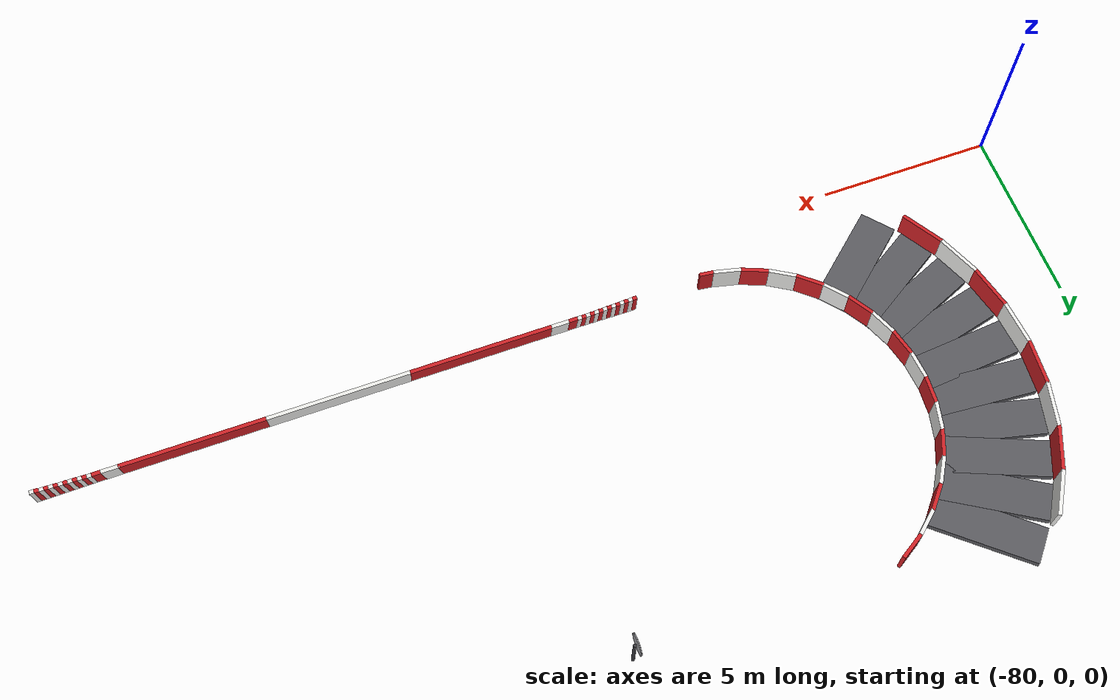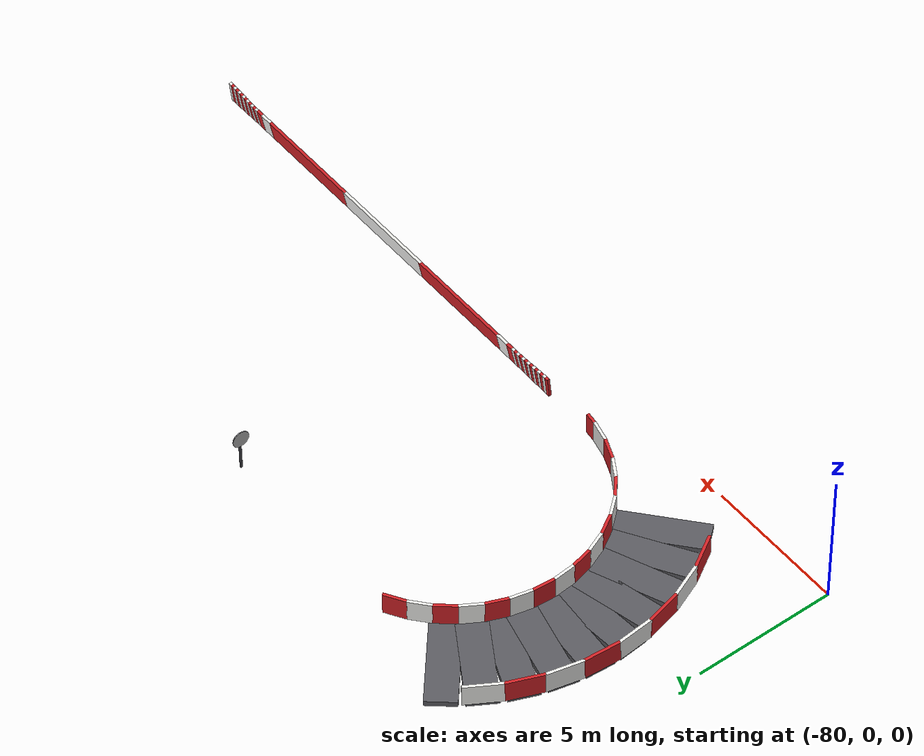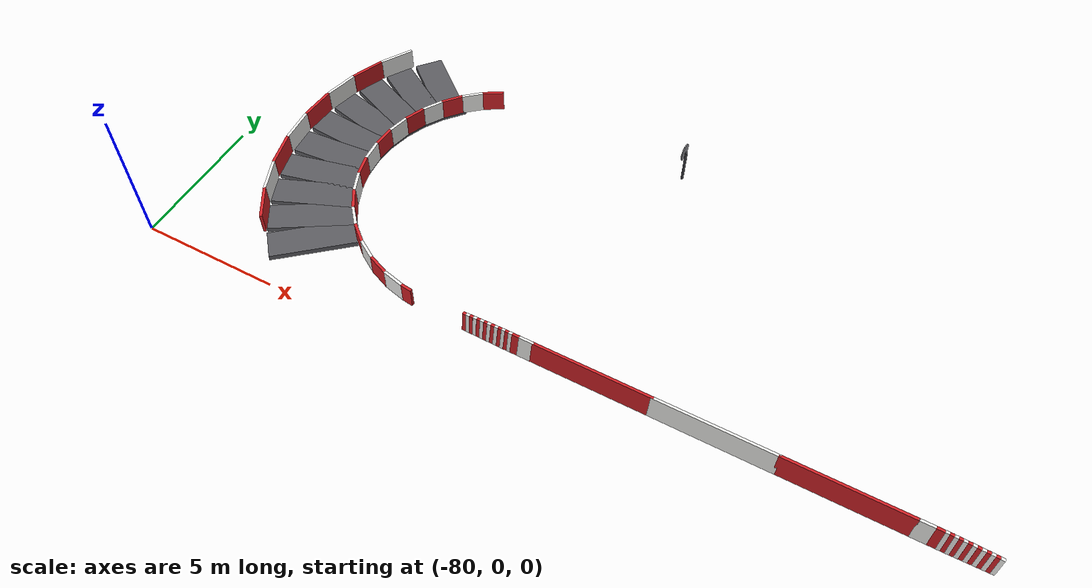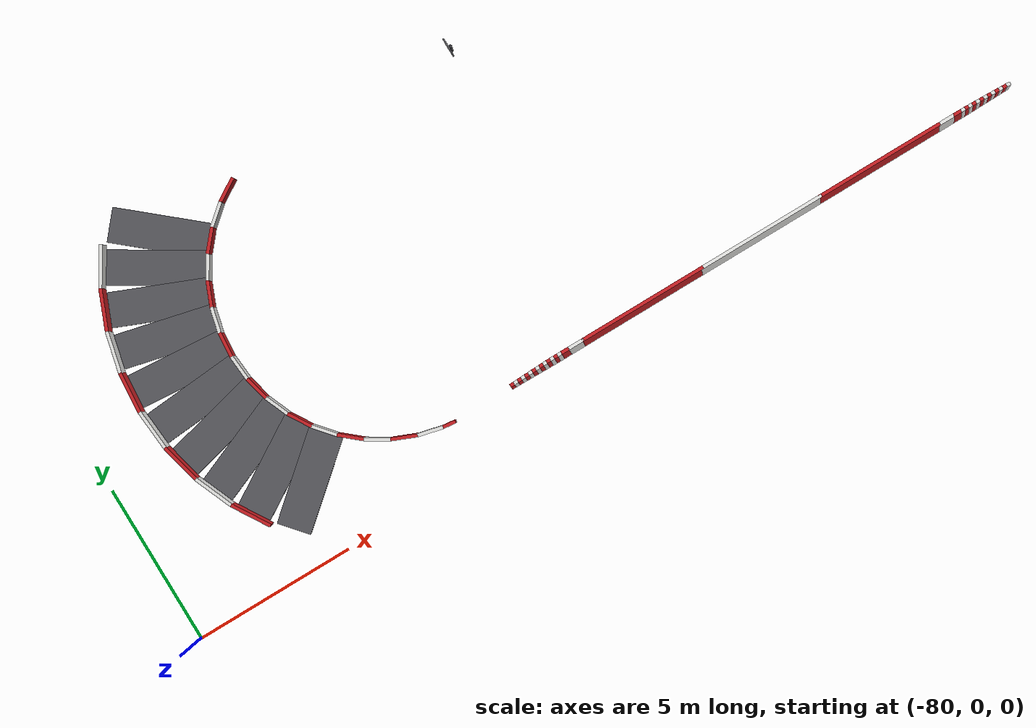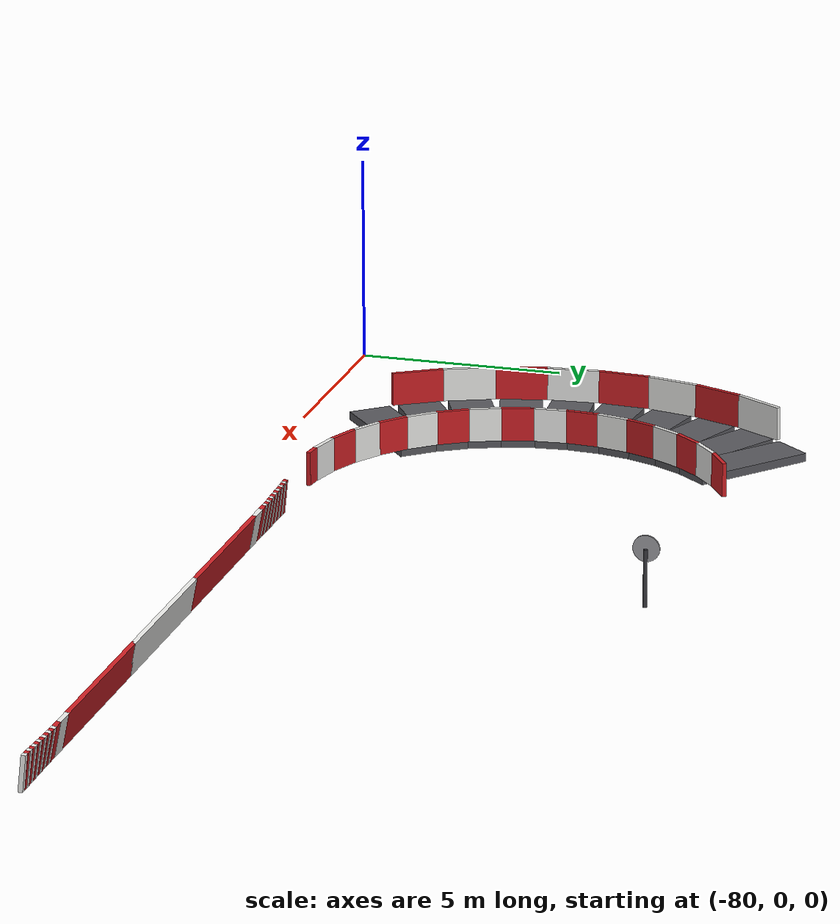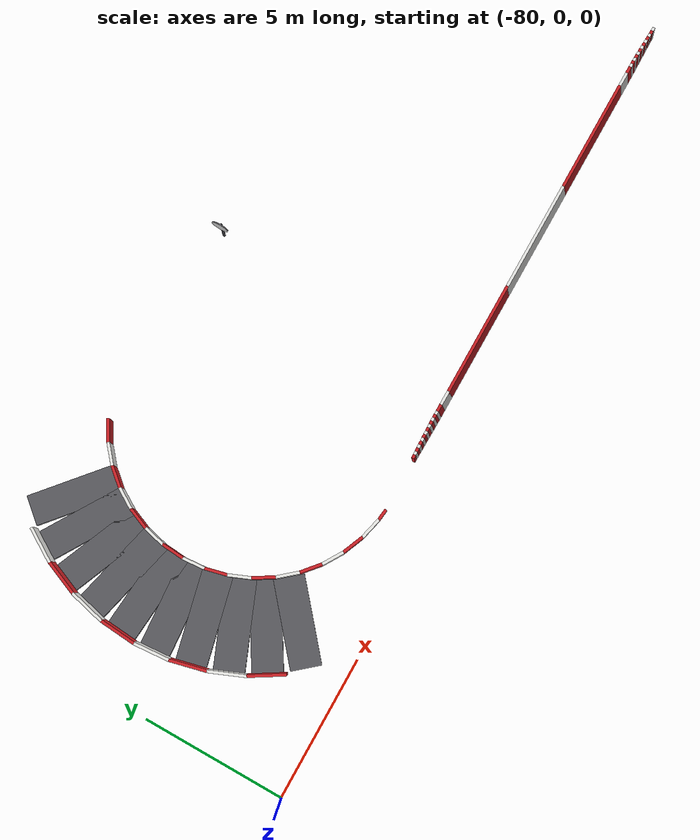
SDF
<sdf version="1.10">
 <world name="ika_parkur">
  <model name="parkur_road">
   <static>true</static>
   <link name="road_0085">
    <pose>-74.927402 2.291601 -0.1 0 0 2.277655</pose>
    <collision name="road_0085_col">
     <geometry><box><size>1.040368 3 0.2</size></box></geometry>
     <surface>
      <friction><ode><mu>1</mu><mu2>1</mu2></ode></friction>
      <contact><ode><kp>1000000</kp><kd>1</kd></ode></contact>
     </surface>
    </collision>
    <visual name="road_0085_vis">
     <geometry><box><size>1.040368 3 0.2</size></box></geometry>
     <material>
      <ambient>0.35 0.35 0.37 1</ambient>
      <diffuse>0.35 0.35 0.37 1</diffuse>
      <specular>0.1 0.1 0.1 1</specular>
     </material>
    </visual>
   </link>
   <link name="road_0086">
    <pose>-75.525076 3.114229 -0.1 0 0 2.120575</pose>
    <collision name="road_0086_col">
     <geometry><box><size>1.040368 3 0.2</size></box></geometry>
     <surface>
      <friction><ode><mu>1</mu><mu2>1</mu2></ode></friction>
      <contact><ode><kp>1000000</kp><kd>1</kd></ode></contact>
     </surface>
    </collision>
    <visual name="road_0086_vis">
     <geometry><box><size>1.040368 3 0.2</size></box></geometry>
     <material>
      <ambient>0.35 0.35 0.37 1</ambient>
      <diffuse>0.35 0.35 0.37 1</diffuse>
      <specular>0.1 0.1 0.1 1</specular>
     </material>
    </visual>
   </link>
   <link name="road_0087">
    <pose>-75.986705 4.020226 -0.1 0 0 1.963495</pose>
    <collision name="road_0087_col">
     <geometry><box><size>1.040368 3 0.2</size></box></geometry>
     <surface>
      <friction><ode><mu>1</mu><mu2>1</mu2></ode></friction>
      <contact><ode><kp>1000000</kp><kd>1</kd></ode></contact>
     </surface>
    </collision>
    <visual name="road_0087_vis">
     <geometry><box><size>1.040368 3 0.2</size></box></geometry>
     <material>
      <ambient>0.35 0.35 0.37 1</ambient>
      <diffuse>0.35 0.35 0.37 1</diffuse>
      <specular>0.1 0.1 0.1 1</specular>
     </material>
    </visual>
   </link>
   <link name="road_0088">
    <pose>-76.300921 4.987283 -0.1 0 0 1.806416</pose>
    <collision name="road_0088_col">
     <geometry><box><size>1.040368 3 0.2</size></box></geometry>
     <surface>
      <friction><ode><mu>1</mu><mu2>1</mu2></ode></friction>
      <contact><ode><kp>1000000</kp><kd>1</kd></ode></contact>
     </surface>
    </collision>
    <visual name="road_0088_vis">
     <geometry><box><size>1.040368 3 0.2</size></box></geometry>
     <material>
      <ambient>0.35 0.35 0.37 1</ambient>
      <diffuse>0.35 0.35 0.37 1</diffuse>
      <specular>0.1 0.1 0.1 1</specular>
     </material>
    </visual>
   </link>
   <link name="road_0089">
    <pose>-76.459987 5.991588 -0.1 0 0 1.649336</pose>
    <collision name="road_0089_col">
     <geometry><box><size>1.040368 3 0.2</size></box></geometry>
     <surface>
      <friction><ode><mu>1</mu><mu2>1</mu2></ode></friction>
      <contact><ode><kp>1000000</kp><kd>1</kd></ode></contact>
     </surface>
    </collision>
    <visual name="road_0089_vis">
     <geometry><box><size>1.040368 3 0.2</size></box></geometry>
     <material>
      <ambient>0.35 0.35 0.37 1</ambient>
      <diffuse>0.35 0.35 0.37 1</diffuse>
      <specular>0.1 0.1 0.1 1</specular>
     </material>
    </visual>
   </link>
   <link name="road_0090">
    <pose>-76.459987 7.008412 -0.1 0 0 1.492257</pose>
    <collision name="road_0090_col">
     <geometry><box><size>1.040368 3 0.2</size></box></geometry>
     <surface>
      <friction><ode><mu>1</mu><mu2>1</mu2></ode></friction>
      <contact><ode><kp>1000000</kp><kd>1</kd></ode></contact>
     </surface>
    </collision>
    <visual name="road_0090_vis">
     <geometry><box><size>1.040368 3 0.2</size></box></geometry>
     <material>
      <ambient>0.35 0.35 0.37 1</ambient>
      <diffuse>0.35 0.35 0.37 1</diffuse>
      <specular>0.1 0.1 0.1 1</specular>
     </material>
    </visual>
   </link>
   <link name="road_0091">
    <pose>-76.300921 8.012717 -0.1 0 0 1.335177</pose>
    <collision name="road_0091_col">
     <geometry><box><size>1.040368 3 0.2</size></box></geometry>
     <surface>
      <friction><ode><mu>1</mu><mu2>1</mu2></ode></friction>
      <contact><ode><kp>1000000</kp><kd>1</kd></ode></contact>
     </surface>
    </collision>
    <visual name="road_0091_vis">
     <geometry><box><size>1.040368 3 0.2</size></box></geometry>
     <material>
      <ambient>0.35 0.35 0.37 1</ambient>
      <diffuse>0.35 0.35 0.37 1</diffuse>
      <specular>0.1 0.1 0.1 1</specular>
     </material>
    </visual>
   </link>
   <link name="road_0092">
    <pose>-75.986705 8.979774 -0.1 0 0 1.178097</pose>
    <collision name="road_0092_col">
     <geometry><box><size>1.040368 3 0.2</size></box></geometry>
     <surface>
      <friction><ode><mu>1</mu><mu2>1</mu2></ode></friction>
      <contact><ode><kp>1000000</kp><kd>1</kd></ode></contact>
     </surface>
    </collision>
    <visual name="road_0092_vis">
     <geometry><box><size>1.040368 3 0.2</size></box></geometry>
     <material>
      <ambient>0.35 0.35 0.37 1</ambient>
      <diffuse>0.35 0.35 0.37 1</diffuse>
      <specular>0.1 0.1 0.1 1</specular>
     </material>
    </visual>
   </link>
   <link name="road_0093">
    <pose>-75.525076 9.885771 -0.1 0 0 1.021018</pose>
    <collision name="road_0093_col">
     <geometry><box><size>1.040368 3 0.2</size></box></geometry>
     <surface>
      <friction><ode><mu>1</mu><mu2>1</mu2></ode></friction>
      <contact><ode><kp>1000000</kp><kd>1</kd></ode></contact>
     </surface>
    </collision>
    <visual name="road_0093_vis">
     <geometry><box><size>1.040368 3 0.2</size></box></geometry>
     <material>
      <ambient>0.35 0.35 0.37 1</ambient>
      <diffuse>0.35 0.35 0.37 1</diffuse>
      <specular>0.1 0.1 0.1 1</specular>
     </material>
    </visual>
   </link>
   <link name="road_0094">
    <pose>-74.927402 10.708399 -0.1 0 0 0.863938</pose>
    <collision name="road_0094_col">
     <geometry><box><size>1.040368 3 0.2</size></box></geometry>
     <surface>
      <friction><ode><mu>1</mu><mu2>1</mu2></ode></friction>
      <contact><ode><kp>1000000</kp><kd>1</kd></ode></contact>
     </surface>
    </collision>
    <visual name="road_0094_vis">
     <geometry><box><size>1.040368 3 0.2</size></box></geometry>
     <material>
      <ambient>0.35 0.35 0.37 1</ambient>
      <diffuse>0.35 0.35 0.37 1</diffuse>
      <specular>0.1 0.1 0.1 1</specular>
     </material>
    </visual>
   </link>
  </model>
  <model name="parkur_barriers">
   <static>true</static>
   <link name="barrier_r_0031">
    <pose>-51.689295 1.583112 0.391437 0.106923 0.003301 -3.130292</pose>
    <collision name="barrier_r_0031_col">
     <geometry><box><size>0.127509 0.1 0.8</size></box></geometry>
     <surface>
      <friction><ode><mu>0.6</mu><mu2>0.6</mu2></ode></friction>
      <contact><ode><kp>1000000</kp><kd>1</kd></ode></contact>
     </surface>
    </collision>
    <visual name="barrier_r_0031_vis">
     <geometry><box><size>0.127509 0.1 0.8</size></box></geometry>
     <material>
      <ambient>0.93 0.93 0.92 1</ambient>
      <diffuse>0.93 0.93 0.92 1</diffuse>
      <specular>0.1 0.1 0.1 1</specular>
     </material>
    </visual>
   </link>
   <link name="barrier_r_0032">
    <pose>-51.814331 1.584916 0.390666 0.115147 0.003205 -3.129459</pose>
    <collision name="barrier_r_0032_col">
     <geometry><box><size>0.12751 0.1 0.8</size></box></geometry>
     <surface>
      <friction><ode><mu>0.6</mu><mu2>0.6</mu2></ode></friction>
      <contact><ode><kp>1000000</kp><kd>1</kd></ode></contact>
     </surface>
    </collision>
    <visual name="barrier_r_0032_vis">
     <geometry><box><size>0.12751 0.1 0.8</size></box></geometry>
     <material>
      <ambient>0.81 0.13 0.15 1</ambient>
      <diffuse>0.81 0.13 0.15 1</diffuse>
      <specular>0.1 0.1 0.1 1</specular>
     </material>
    </visual>
   </link>
   <link name="barrier_r_0033">
    <pose>-51.939369 1.586612 0.389881 0.123372 0.003101 -3.128627</pose>
    <collision name="barrier_r_0033_col">
     <geometry><box><size>0.127511 0.1 0.8</size></box></geometry>
     <surface>
      <friction><ode><mu>0.6</mu><mu2>0.6</mu2></ode></friction>
      <contact><ode><kp>1000000</kp><kd>1</kd></ode></contact>
     </surface>
    </collision>
    <visual name="barrier_r_0033_vis">
     <geometry><box><size>0.127511 0.1 0.8</size></box></geometry>
     <material>
      <ambient>0.93 0.93 0.92 1</ambient>
      <diffuse>0.93 0.93 0.92 1</diffuse>
      <specular>0.1 0.1 0.1 1</specular>
     </material>
    </visual>
   </link>
   <link name="barrier_r_0034">
    <pose>-52.06441 1.588201 0.389082 0.131597 0.002991 -3.127795</pose>
    <collision name="barrier_r_0034_col">
     <geometry><box><size>0.127513 0.1 0.8</size></box></geometry>
     <surface>
      <friction><ode><mu>0.6</mu><mu2>0.6</mu2></ode></friction>
      <contact><ode><kp>1000000</kp><kd>1</kd></ode></contact>
     </surface>
    </collision>
    <visual name="barrier_r_0034_vis">
     <geometry><box><size>0.127513 0.1 0.8</size></box></geometry>
     <material>
      <ambient>0.81 0.13 0.15 1</ambient>
      <diffuse>0.81 0.13 0.15 1</diffuse>
      <specular>0.1 0.1 0.1 1</specular>
     </material>
    </visual>
   </link>
   <link name="barrier_r_0035">
    <pose>-52.189454 1.589683 0.38827 0.139822 0.002874 -3.126965</pose>
    <collision name="barrier_r_0035_col">
     <geometry><box><size>0.127514 0.1 0.8</size></box></geometry>
     <surface>
      <friction><ode><mu>0.6</mu><mu2>0.6</mu2></ode></friction>
      <contact><ode><kp>1000000</kp><kd>1</kd></ode></contact>
     </surface>
    </collision>
    <visual name="barrier_r_0035_vis">
     <geometry><box><size>0.127514 0.1 0.8</size></box></geometry>
     <material>
      <ambient>0.93 0.93 0.92 1</ambient>
      <diffuse>0.93 0.93 0.92 1</diffuse>
      <specular>0.1 0.1 0.1 1</specular>
     </material>
    </visual>
   </link>
   <link name="barrier_r_0036">
    <pose>-52.3145 1.591057 0.387447 0.148047 0.002751 -3.126135</pose>
    <collision name="barrier_r_0036_col">
     <geometry><box><size>0.127516 0.1 0.8</size></box></geometry>
     <surface>
      <friction><ode><mu>0.6</mu><mu2>0.6</mu2></ode></friction>
      <contact><ode><kp>1000000</kp><kd>1</kd></ode></contact>
     </surface>
    </collision>
    <visual name="barrier_r_0036_vis">
     <geometry><box><size>0.127516 0.1 0.8</size></box></geometry>
     <material>
      <ambient>0.81 0.13 0.15 1</ambient>
      <diffuse>0.81 0.13 0.15 1</diffuse>
      <specular>0.1 0.1 0.1 1</specular>
     </material>
    </visual>
   </link>
   <link name="barrier_r_0037">
    <pose>-52.439549 1.592324 0.386612 0.156271 0.00262 -3.125307</pose>
    <collision name="barrier_r_0037_col">
     <geometry><box><size>0.127517 0.1 0.8</size></box></geometry>
     <surface>
      <friction><ode><mu>0.6</mu><mu2>0.6</mu2></ode></friction>
      <contact><ode><kp>1000000</kp><kd>1</kd></ode></contact>
     </surface>
    </collision>
    <visual name="barrier_r_0037_vis">
     <geometry><box><size>0.127517 0.1 0.8</size></box></geometry>
     <material>
      <ambient>0.93 0.93 0.92 1</ambient>
      <diffuse>0.93 0.93 0.92 1</diffuse>
      <specular>0.1 0.1 0.1 1</specular>
     </material>
    </visual>
   </link>
   <link name="barrier_r_0038">
    <pose>-52.5646 1.593483 0.385768 0.164496 0.002483 -3.12448</pose>
    <collision name="barrier_r_0038_col">
     <geometry><box><size>0.127519 0.1 0.8</size></box></geometry>
     <surface>
      <friction><ode><mu>0.6</mu><mu2>0.6</mu2></ode></friction>
      <contact><ode><kp>1000000</kp><kd>1</kd></ode></contact>
     </surface>
    </collision>
    <visual name="barrier_r_0038_vis">
     <geometry><box><size>0.127519 0.1 0.8</size></box></geometry>
     <material>
      <ambient>0.81 0.13 0.15 1</ambient>
      <diffuse>0.81 0.13 0.15 1</diffuse>
      <specular>0.1 0.1 0.1 1</specular>
     </material>
    </visual>
   </link>
   <link name="barrier_r_0039">
    <pose>-52.689655 1.594534 0.384915 0.172721 0.002339 -3.123654</pose>
    <collision name="barrier_r_0039_col">
     <geometry><box><size>0.127521 0.1 0.8</size></box></geometry>
     <surface>
      <friction><ode><mu>0.6</mu><mu2>0.6</mu2></ode></friction>
      <contact><ode><kp>1000000</kp><kd>1</kd></ode></contact>
     </surface>
    </collision>
    <visual name="barrier_r_0039_vis">
     <geometry><box><size>0.127521 0.1 0.8</size></box></geometry>
     <material>
      <ambient>0.93 0.93 0.92 1</ambient>
      <diffuse>0.93 0.93 0.92 1</diffuse>
      <specular>0.1 0.1 0.1 1</specular>
     </material>
    </visual>
   </link>
   <link name="barrier_r_0040">
    <pose>-52.814711 1.595477 0.384053 0.180946 0.002188 -3.122829</pose>
    <collision name="barrier_r_0040_col">
     <geometry><box><size>0.127523 0.1 0.8</size></box></geometry>
     <surface>
      <friction><ode><mu>0.6</mu><mu2>0.6</mu2></ode></friction>
      <contact><ode><kp>1000000</kp><kd>1</kd></ode></contact>
     </surface>
    </collision>
    <visual name="barrier_r_0040_vis">
     <geometry><box><size>0.127523 0.1 0.8</size></box></geometry>
     <material>
      <ambient>0.81 0.13 0.15 1</ambient>
      <diffuse>0.81 0.13 0.15 1</diffuse>
      <specular>0.1 0.1 0.1 1</specular>
     </material>
    </visual>
   </link>
   <link name="barrier_r_0041">
    <pose>-52.939771 1.596312 0.383184 0.189171 0.00203 -3.122005</pose>
    <collision name="barrier_r_0041_col">
     <geometry><box><size>0.127525 0.1 0.8</size></box></geometry>
     <surface>
      <friction><ode><mu>0.6</mu><mu2>0.6</mu2></ode></friction>
      <contact><ode><kp>1000000</kp><kd>1</kd></ode></contact>
     </surface>
    </collision>
    <visual name="barrier_r_0041_vis">
     <geometry><box><size>0.127525 0.1 0.8</size></box></geometry>
     <material>
      <ambient>0.93 0.93 0.92 1</ambient>
      <diffuse>0.93 0.93 0.92 1</diffuse>
      <specular>0.1 0.1 0.1 1</specular>
     </material>
    </visual>
   </link>
   <link name="barrier_r_0042">
    <pose>-53.0625 1.598347 0.382426 0.197396 0 3.141593</pose>
    <collision name="barrier_r_0042_col">
     <geometry><box><size>0.1275 0.1 0.8</size></box></geometry>
     <surface>
      <friction><ode><mu>0.6</mu><mu2>0.6</mu2></ode></friction>
      <contact><ode><kp>1000000</kp><kd>1</kd></ode></contact>
     </surface>
    </collision>
    <visual name="barrier_r_0042_vis">
     <geometry><box><size>0.1275 0.1 0.8</size></box></geometry>
     <material>
      <ambient>0.81 0.13 0.15 1</ambient>
      <diffuse>0.81 0.13 0.15 1</diffuse>
      <specular>0.1 0.1 0.1 1</specular>
     </material>
    </visual>
   </link>
   <link name="barrier_r_0043">
    <pose>-53.1875 1.598347 0.382426 0.197396 0 3.141593</pose>
    <collision name="barrier_r_0043_col">
     <geometry><box><size>0.1275 0.1 0.8</size></box></geometry>
     <surface>
      <friction><ode><mu>0.6</mu><mu2>0.6</mu2></ode></friction>
      <contact><ode><kp>1000000</kp><kd>1</kd></ode></contact>
     </surface>
    </collision>
    <visual name="barrier_r_0043_vis">
     <geometry><box><size>0.1275 0.1 0.8</size></box></geometry>
     <material>
      <ambient>0.93 0.93 0.92 1</ambient>
      <diffuse>0.93 0.93 0.92 1</diffuse>
      <specular>0.1 0.1 0.1 1</specular>
     </material>
    </visual>
   </link>
   <link name="barrier_r_0044">
    <pose>-53.375 1.598347 0.382426 0.197396 0 3.141593</pose>
    <collision name="barrier_r_0044_col">
     <geometry><box><size>0.255 0.1 0.8</size></box></geometry>
     <surface>
      <friction><ode><mu>0.6</mu><mu2>0.6</mu2></ode></friction>
      <contact><ode><kp>1000000</kp><kd>1</kd></ode></contact>
     </surface>
    </collision>
    <visual name="barrier_r_0044_vis">
     <geometry><box><size>0.255 0.1 0.8</size></box></geometry>
     <material>
      <ambient>0.81 0.13 0.15 1</ambient>
      <diffuse>0.81 0.13 0.15 1</diffuse>
      <specular>0.1 0.1 0.1 1</specular>
     </material>
    </visual>
   </link>
   <link name="barrier_r_0045">
    <pose>-53.75 1.598347 0.382426 0.197396 0 3.141593</pose>
    <collision name="barrier_r_0045_col">
     <geometry><box><size>0.51 0.1 0.8</size></box></geometry>
     <surface>
      <friction><ode><mu>0.6</mu><mu2>0.6</mu2></ode></friction>
      <contact><ode><kp>1000000</kp><kd>1</kd></ode></contact>
     </surface>
    </collision>
    <visual name="barrier_r_0045_vis">
     <geometry><box><size>0.51 0.1 0.8</size></box></geometry>
     <material>
      <ambient>0.93 0.93 0.92 1</ambient>
      <diffuse>0.93 0.93 0.92 1</diffuse>
      <specular>0.1 0.1 0.1 1</specular>
     </material>
    </visual>
   </link>
   <link name="barrier_r_0046">
    <pose>-56 1.598347 0.382426 0.197396 0 3.141593</pose>
    <collision name="barrier_r_0046_col">
     <geometry><box><size>4.08 0.1 0.8</size></box></geometry>
     <surface>
      <friction><ode><mu>0.6</mu><mu2>0.6</mu2></ode></friction>
      <contact><ode><kp>1000000</kp><kd>1</kd></ode></contact>
     </surface>
    </collision>
    <visual name="barrier_r_0046_vis">
     <geometry><box><size>4.08 0.1 0.8</size></box></geometry>
     <material>
      <ambient>0.81 0.13 0.15 1</ambient>
      <diffuse>0.81 0.13 0.15 1</diffuse>
      <specular>0.1 0.1 0.1 1</specular>
     </material>
    </visual>
   </link>
   <link name="barrier_r_0047">
    <pose>-60 1.598347 0.382426 0.197396 0 3.141593</pose>
    <collision name="barrier_r_0047_col">
     <geometry><box><size>4.08 0.1 0.8</size></box></geometry>
     <surface>
      <friction><ode><mu>0.6</mu><mu2>0.6</mu2></ode></friction>
      <contact><ode><kp>1000000</kp><kd>1</kd></ode></contact>
     </surface>
    </collision>
    <visual name="barrier_r_0047_vis">
     <geometry><box><size>4.08 0.1 0.8</size></box></geometry>
     <material>
      <ambient>0.93 0.93 0.92 1</ambient>
      <diffuse>0.93 0.93 0.92 1</diffuse>
      <specular>0.1 0.1 0.1 1</specular>
     </material>
    </visual>
   </link>
   <link name="barrier_r_0048">
    <pose>-64 1.598347 0.382426 0.197396 0 3.141593</pose>
    <collision name="barrier_r_0048_col">
     <geometry><box><size>4.08 0.1 0.8</size></box></geometry>
     <surface>
      <friction><ode><mu>0.6</mu><mu2>0.6</mu2></ode></friction>
      <contact><ode><kp>1000000</kp><kd>1</kd></ode></contact>
     </surface>
    </collision>
    <visual name="barrier_r_0048_vis">
     <geometry><box><size>4.08 0.1 0.8</size></box></geometry>
     <material>
      <ambient>0.81 0.13 0.15 1</ambient>
      <diffuse>0.81 0.13 0.15 1</diffuse>
      <specular>0.1 0.1 0.1 1</specular>
     </material>
    </visual>
   </link>
   <link name="barrier_r_0049">
    <pose>-66.25 1.598347 0.382426 0.197396 0 3.141593</pose>
    <collision name="barrier_r_0049_col">
     <geometry><box><size>0.51 0.1 0.8</size></box></geometry>
     <surface>
      <friction><ode><mu>0.6</mu><mu2>0.6</mu2></ode></friction>
      <contact><ode><kp>1000000</kp><kd>1</kd></ode></contact>
     </surface>
    </collision>
    <visual name="barrier_r_0049_vis">
     <geometry><box><size>0.51 0.1 0.8</size></box></geometry>
     <material>
      <ambient>0.93 0.93 0.92 1</ambient>
      <diffuse>0.93 0.93 0.92 1</diffuse>
      <specular>0.1 0.1 0.1 1</specular>
     </material>
    </visual>
   </link>
   <link name="barrier_r_0050">
    <pose>-66.625 1.598347 0.382426 0.197396 0 3.141593</pose>
    <collision name="barrier_r_0050_col">
     <geometry><box><size>0.255 0.1 0.8</size></box></geometry>
     <surface>
      <friction><ode><mu>0.6</mu><mu2>0.6</mu2></ode></friction>
      <contact><ode><kp>1000000</kp><kd>1</kd></ode></contact>
     </surface>
    </collision>
    <visual name="barrier_r_0050_vis">
     <geometry><box><size>0.255 0.1 0.8</size></box></geometry>
     <material>
      <ambient>0.81 0.13 0.15 1</ambient>
      <diffuse>0.81 0.13 0.15 1</diffuse>
      <specular>0.1 0.1 0.1 1</specular>
     </material>
    </visual>
   </link>
   <link name="barrier_r_0051">
    <pose>-66.8125 1.598347 0.382426 0.197396 0 3.141593</pose>
    <collision name="barrier_r_0051_col">
     <geometry><box><size>0.1275 0.1 0.8</size></box></geometry>
     <surface>
      <friction><ode><mu>0.6</mu><mu2>0.6</mu2></ode></friction>
      <contact><ode><kp>1000000</kp><kd>1</kd></ode></contact>
     </surface>
    </collision>
    <visual name="barrier_r_0051_vis">
     <geometry><box><size>0.1275 0.1 0.8</size></box></geometry>
     <material>
      <ambient>0.93 0.93 0.92 1</ambient>
      <diffuse>0.93 0.93 0.92 1</diffuse>
      <specular>0.1 0.1 0.1 1</specular>
     </material>
    </visual>
   </link>
   <link name="barrier_r_0052">
    <pose>-66.9375 1.598347 0.382426 0.197396 0 3.141593</pose>
    <collision name="barrier_r_0052_col">
     <geometry><box><size>0.1275 0.1 0.8</size></box></geometry>
     <surface>
      <friction><ode><mu>0.6</mu><mu2>0.6</mu2></ode></friction>
      <contact><ode><kp>1000000</kp><kd>1</kd></ode></contact>
     </surface>
    </collision>
    <visual name="barrier_r_0052_vis">
     <geometry><box><size>0.1275 0.1 0.8</size></box></geometry>
     <material>
      <ambient>0.81 0.13 0.15 1</ambient>
      <diffuse>0.81 0.13 0.15 1</diffuse>
      <specular>0.1 0.1 0.1 1</specular>
     </material>
    </visual>
   </link>
   <link name="barrier_r_0053">
    <pose>-67.060168 1.59954 0.382553 0.197396 -0.00203 3.122005</pose>
    <collision name="barrier_r_0053_col">
     <geometry><box><size>0.127525 0.1 0.8</size></box></geometry>
     <surface>
      <friction><ode><mu>0.6</mu><mu2>0.6</mu2></ode></friction>
      <contact><ode><kp>1000000</kp><kd>1</kd></ode></contact>
     </surface>
    </collision>
    <visual name="barrier_r_0053_vis">
     <geometry><box><size>0.127525 0.1 0.8</size></box></geometry>
     <material>
      <ambient>0.93 0.93 0.92 1</ambient>
      <diffuse>0.93 0.93 0.92 1</diffuse>
      <specular>0.1 0.1 0.1 1</specular>
     </material>
    </visual>
   </link>
   <link name="barrier_r_0054">
    <pose>-67.185229 1.59871 0.383448 0.189171 -0.002188 3.122829</pose>
    <collision name="barrier_r_0054_col">
     <geometry><box><size>0.127523 0.1 0.8</size></box></geometry>
     <surface>
      <friction><ode><mu>0.6</mu><mu2>0.6</mu2></ode></friction>
      <contact><ode><kp>1000000</kp><kd>1</kd></ode></contact>
     </surface>
    </collision>
    <visual name="barrier_r_0054_vis">
     <geometry><box><size>0.127523 0.1 0.8</size></box></geometry>
     <material>
      <ambient>0.81 0.13 0.15 1</ambient>
      <diffuse>0.81 0.13 0.15 1</diffuse>
      <specular>0.1 0.1 0.1 1</specular>
     </material>
    </visual>
   </link>
   <link name="barrier_r_0055">
    <pose>-67.310289 1.597772 0.384336 0.180946 -0.002339 3.123654</pose>
    <collision name="barrier_r_0055_col">
     <geometry><box><size>0.127521 0.1 0.8</size></box></geometry>
     <surface>
      <friction><ode><mu>0.6</mu><mu2>0.6</mu2></ode></friction>
      <contact><ode><kp>1000000</kp><kd>1</kd></ode></contact>
     </surface>
    </collision>
    <visual name="barrier_r_0055_vis">
     <geometry><box><size>0.127521 0.1 0.8</size></box></geometry>
     <material>
      <ambient>0.93 0.93 0.92 1</ambient>
      <diffuse>0.93 0.93 0.92 1</diffuse>
      <specular>0.1 0.1 0.1 1</specular>
     </material>
    </visual>
   </link>
   <link name="barrier_r_0056">
    <pose>-67.435345 1.596725 0.385216 0.172721 -0.002483 3.12448</pose>
    <collision name="barrier_r_0056_col">
     <geometry><box><size>0.127519 0.1 0.8</size></box></geometry>
     <surface>
      <friction><ode><mu>0.6</mu><mu2>0.6</mu2></ode></friction>
      <contact><ode><kp>1000000</kp><kd>1</kd></ode></contact>
     </surface>
    </collision>
    <visual name="barrier_r_0056_vis">
     <geometry><box><size>0.127519 0.1 0.8</size></box></geometry>
     <material>
      <ambient>0.81 0.13 0.15 1</ambient>
      <diffuse>0.81 0.13 0.15 1</diffuse>
      <specular>0.1 0.1 0.1 1</specular>
     </material>
    </visual>
   </link>
   <link name="barrier_r_0057">
    <pose>-67.5604 1.595571 0.386087 0.164496 -0.00262 3.125307</pose>
    <collision name="barrier_r_0057_col">
     <geometry><box><size>0.127517 0.1 0.8</size></box></geometry>
     <surface>
      <friction><ode><mu>0.6</mu><mu2>0.6</mu2></ode></friction>
      <contact><ode><kp>1000000</kp><kd>1</kd></ode></contact>
     </surface>
    </collision>
    <visual name="barrier_r_0057_vis">
     <geometry><box><size>0.127517 0.1 0.8</size></box></geometry>
     <material>
      <ambient>0.93 0.93 0.92 1</ambient>
      <diffuse>0.93 0.93 0.92 1</diffuse>
      <specular>0.1 0.1 0.1 1</specular>
     </material>
    </visual>
   </link>
   <link name="barrier_r_0058">
    <pose>-67.685451 1.594309 0.386948 0.156271 -0.002751 3.126135</pose>
    <collision name="barrier_r_0058_col">
     <geometry><box><size>0.127516 0.1 0.8</size></box></geometry>
     <surface>
      <friction><ode><mu>0.6</mu><mu2>0.6</mu2></ode></friction>
      <contact><ode><kp>1000000</kp><kd>1</kd></ode></contact>
     </surface>
    </collision>
    <visual name="barrier_r_0058_vis">
     <geometry><box><size>0.127516 0.1 0.8</size></box></geometry>
     <material>
      <ambient>0.81 0.13 0.15 1</ambient>
      <diffuse>0.81 0.13 0.15 1</diffuse>
      <specular>0.1 0.1 0.1 1</specular>
     </material>
    </visual>
   </link>
   <link name="barrier_r_0059">
    <pose>-67.8105 1.592939 0.387798 0.148047 -0.002874 3.126965</pose>
    <collision name="barrier_r_0059_col">
     <geometry><box><size>0.127514 0.1 0.8</size></box></geometry>
     <surface>
      <friction><ode><mu>0.6</mu><mu2>0.6</mu2></ode></friction>
      <contact><ode><kp>1000000</kp><kd>1</kd></ode></contact>
     </surface>
    </collision>
    <visual name="barrier_r_0059_vis">
     <geometry><box><size>0.127514 0.1 0.8</size></box></geometry>
     <material>
      <ambient>0.93 0.93 0.92 1</ambient>
      <diffuse>0.93 0.93 0.92 1</diffuse>
      <specular>0.1 0.1 0.1 1</specular>
     </material>
    </visual>
   </link>
   <link name="barrier_r_0060">
    <pose>-67.935546 1.591461 0.388637 0.139822 -0.002991 3.127795</pose>
    <collision name="barrier_r_0060_col">
     <geometry><box><size>0.127513 0.1 0.8</size></box></geometry>
     <surface>
      <friction><ode><mu>0.6</mu><mu2>0.6</mu2></ode></friction>
      <contact><ode><kp>1000000</kp><kd>1</kd></ode></contact>
     </surface>
    </collision>
    <visual name="barrier_r_0060_vis">
     <geometry><box><size>0.127513 0.1 0.8</size></box></geometry>
     <material>
      <ambient>0.81 0.13 0.15 1</ambient>
      <diffuse>0.81 0.13 0.15 1</diffuse>
      <specular>0.1 0.1 0.1 1</specular>
     </material>
    </visual>
   </link>
   <link name="barrier_r_0061">
    <pose>-68.06059 1.589875 0.389462 0.131597 -0.003101 3.128627</pose>
    <collision name="barrier_r_0061_col">
     <geometry><box><size>0.127511 0.1 0.8</size></box></geometry>
     <surface>
      <friction><ode><mu>0.6</mu><mu2>0.6</mu2></ode></friction>
      <contact><ode><kp>1000000</kp><kd>1</kd></ode></contact>
     </surface>
    </collision>
    <visual name="barrier_r_0061_vis">
     <geometry><box><size>0.127511 0.1 0.8</size></box></geometry>
     <material>
      <ambient>0.93 0.93 0.92 1</ambient>
      <diffuse>0.93 0.93 0.92 1</diffuse>
      <specular>0.1 0.1 0.1 1</specular>
     </material>
    </visual>
   </link>
   <link name="barrier_r_0062">
    <pose>-68.185631 1.588182 0.390275 0.123372 -0.003205 3.129459</pose>
    <collision name="barrier_r_0062_col">
     <geometry><box><size>0.12751 0.1 0.8</size></box></geometry>
     <surface>
      <friction><ode><mu>0.6</mu><mu2>0.6</mu2></ode></friction>
      <contact><ode><kp>1000000</kp><kd>1</kd></ode></contact>
     </surface>
    </collision>
    <visual name="barrier_r_0062_vis">
     <geometry><box><size>0.12751 0.1 0.8</size></box></geometry>
     <material>
      <ambient>0.81 0.13 0.15 1</ambient>
      <diffuse>0.81 0.13 0.15 1</diffuse>
      <specular>0.1 0.1 0.1 1</specular>
     </material>
    </visual>
   </link>
   <link name="barrier_r_0063">
    <pose>-68.310669 1.586381 0.391073 0.115147 -0.003301 3.130292</pose>
    <collision name="barrier_r_0063_col">
     <geometry><box><size>0.127509 0.1 0.8</size></box></geometry>
     <surface>
      <friction><ode><mu>0.6</mu><mu2>0.6</mu2></ode></friction>
      <contact><ode><kp>1000000</kp><kd>1</kd></ode></contact>
     </surface>
    </collision>
    <visual name="barrier_r_0063_vis">
     <geometry><box><size>0.127509 0.1 0.8</size></box></geometry>
     <material>
      <ambient>0.93 0.93 0.92 1</ambient>
      <diffuse>0.93 0.93 0.92 1</diffuse>
      <specular>0.1 0.1 0.1 1</specular>
     </material>
    </visual>
   </link>
   <link name="barrier_r_0064">
    <pose>-68.435705 1.584474 0.391855 0.106923 -0.003391 3.131126</pose>
    <collision name="barrier_r_0064_col">
     <geometry><box><size>0.127508 0.1 0.8</size></box></geometry>
     <surface>
      <friction><ode><mu>0.6</mu><mu2>0.6</mu2></ode></friction>
      <contact><ode><kp>1000000</kp><kd>1</kd></ode></contact>
     </surface>
    </collision>
    <visual name="barrier_r_0064_vis">
     <geometry><box><size>0.127508 0.1 0.8</size></box></geometry>
     <material>
      <ambient>0.81 0.13 0.15 1</ambient>
      <diffuse>0.81 0.13 0.15 1</diffuse>
      <specular>0.1 0.1 0.1 1</specular>
     </material>
    </visual>
   </link>
   <link name="barrier_r_0080">
    <pose>-70.581362 1.588101 0.4 0 0 3.023783</pose>
    <collision name="barrier_r_0080_col">
     <geometry><box><size>0.396446 0.1 0.8</size></box></geometry>
     <surface>
      <friction><ode><mu>0.6</mu><mu2>0.6</mu2></ode></friction>
      <contact><ode><kp>1000000</kp><kd>1</kd></ode></contact>
     </surface>
    </collision>
    <visual name="barrier_r_0080_vis">
     <geometry><box><size>0.396446 0.1 0.8</size></box></geometry>
     <material>
      <ambient>0.81 0.13 0.15 1</ambient>
      <diffuse>0.81 0.13 0.15 1</diffuse>
      <specular>0.1 0.1 0.1 1</specular>
     </material>
    </visual>
   </link>
   <link name="barrier_r_0081">
    <pose>-71.151992 1.701606 0.4 0 0 2.905973</pose>
    <collision name="barrier_r_0081_col">
     <geometry><box><size>0.79228 0.1 0.8</size></box></geometry>
     <surface>
      <friction><ode><mu>0.6</mu><mu2>0.6</mu2></ode></friction>
      <contact><ode><kp>1000000</kp><kd>1</kd></ode></contact>
     </surface>
    </collision>
    <visual name="barrier_r_0081_vis">
     <geometry><box><size>0.79228 0.1 0.8</size></box></geometry>
     <material>
      <ambient>0.93 0.93 0.92 1</ambient>
      <diffuse>0.93 0.93 0.92 1</diffuse>
      <specular>0.1 0.1 0.1 1</specular>
     </material>
    </visual>
   </link>
   <link name="barrier_r_0082">
    <pose>-71.888444 1.940894 0.4 0 0 2.748894</pose>
    <collision name="barrier_r_0082_col">
     <geometry><box><size>0.79228 0.1 0.8</size></box></geometry>
     <surface>
      <friction><ode><mu>0.6</mu><mu2>0.6</mu2></ode></friction>
      <contact><ode><kp>1000000</kp><kd>1</kd></ode></contact>
     </surface>
    </collision>
    <visual name="barrier_r_0082_vis">
     <geometry><box><size>0.79228 0.1 0.8</size></box></geometry>
     <material>
      <ambient>0.81 0.13 0.15 1</ambient>
      <diffuse>0.81 0.13 0.15 1</diffuse>
      <specular>0.1 0.1 0.1 1</specular>
     </material>
    </visual>
   </link>
   <link name="barrier_r_0083">
    <pose>-72.578395 2.292442 0.4 0 0 2.591814</pose>
    <collision name="barrier_r_0083_col">
     <geometry><box><size>0.79228 0.1 0.8</size></box></geometry>
     <surface>
      <friction><ode><mu>0.6</mu><mu2>0.6</mu2></ode></friction>
      <contact><ode><kp>1000000</kp><kd>1</kd></ode></contact>
     </surface>
    </collision>
    <visual name="barrier_r_0083_vis">
     <geometry><box><size>0.79228 0.1 0.8</size></box></geometry>
     <material>
      <ambient>0.93 0.93 0.92 1</ambient>
      <diffuse>0.93 0.93 0.92 1</diffuse>
      <specular>0.1 0.1 0.1 1</specular>
     </material>
    </visual>
   </link>
   <link name="barrier_r_0084">
    <pose>-73.204858 2.747594 0.4 0 0 2.434734</pose>
    <collision name="barrier_r_0084_col">
     <geometry><box><size>0.79228 0.1 0.8</size></box></geometry>
     <surface>
      <friction><ode><mu>0.6</mu><mu2>0.6</mu2></ode></friction>
      <contact><ode><kp>1000000</kp><kd>1</kd></ode></contact>
     </surface>
    </collision>
    <visual name="barrier_r_0084_vis">
     <geometry><box><size>0.79228 0.1 0.8</size></box></geometry>
     <material>
      <ambient>0.81 0.13 0.15 1</ambient>
      <diffuse>0.81 0.13 0.15 1</diffuse>
      <specular>0.1 0.1 0.1 1</specular>
     </material>
    </visual>
   </link>
   <link name="barrier_r_0085">
    <pose>-73.752406 3.295142 0.4 0 0 2.277655</pose>
    <collision name="barrier_r_0085_col">
     <geometry><box><size>0.79228 0.1 0.8</size></box></geometry>
     <surface>
      <friction><ode><mu>0.6</mu><mu2>0.6</mu2></ode></friction>
      <contact><ode><kp>1000000</kp><kd>1</kd></ode></contact>
     </surface>
    </collision>
    <visual name="barrier_r_0085_vis">
     <geometry><box><size>0.79228 0.1 0.8</size></box></geometry>
     <material>
      <ambient>0.93 0.93 0.92 1</ambient>
      <diffuse>0.93 0.93 0.92 1</diffuse>
      <specular>0.1 0.1 0.1 1</specular>
     </material>
    </visual>
   </link>
   <link name="barrier_l_0086">
    <pose>-76.842595 2.306853 0.4 0 0 2.120575</pose>
    <collision name="barrier_l_0086_col">
     <geometry><box><size>1.288455 0.1 0.8</size></box></geometry>
     <surface>
      <friction><ode><mu>0.6</mu><mu2>0.6</mu2></ode></friction>
      <contact><ode><kp>1000000</kp><kd>1</kd></ode></contact>
     </surface>
    </collision>
    <visual name="barrier_l_0086_vis">
     <geometry><box><size>1.288455 0.1 0.8</size></box></geometry>
     <material>
      <ambient>0.81 0.13 0.15 1</ambient>
      <diffuse>0.81 0.13 0.15 1</diffuse>
      <specular>0.1 0.1 0.1 1</specular>
     </material>
    </visual>
   </link>
   <link name="barrier_r_0086">
    <pose>-74.207558 3.921605 0.4 0 0 2.120575</pose>
    <collision name="barrier_r_0086_col">
     <geometry><box><size>0.79228 0.1 0.8</size></box></geometry>
     <surface>
      <friction><ode><mu>0.6</mu><mu2>0.6</mu2></ode></friction>
      <contact><ode><kp>1000000</kp><kd>1</kd></ode></contact>
     </surface>
    </collision>
    <visual name="barrier_r_0086_vis">
     <geometry><box><size>0.79228 0.1 0.8</size></box></geometry>
     <material>
      <ambient>0.81 0.13 0.15 1</ambient>
      <diffuse>0.81 0.13 0.15 1</diffuse>
      <specular>0.1 0.1 0.1 1</specular>
     </material>
    </visual>
   </link>
   <link name="barrier_l_0087">
    <pose>-77.414304 3.428895 0.4 0 0 1.963495</pose>
    <collision name="barrier_l_0087_col">
     <geometry><box><size>1.288455 0.1 0.8</size></box></geometry>
     <surface>
      <friction><ode><mu>0.6</mu><mu2>0.6</mu2></ode></friction>
      <contact><ode><kp>1000000</kp><kd>1</kd></ode></contact>
     </surface>
    </collision>
    <visual name="barrier_l_0087_vis">
     <geometry><box><size>1.288455 0.1 0.8</size></box></geometry>
     <material>
      <ambient>0.93 0.93 0.92 1</ambient>
      <diffuse>0.93 0.93 0.92 1</diffuse>
      <specular>0.1 0.1 0.1 1</specular>
     </material>
    </visual>
   </link>
   <link name="barrier_r_0087">
    <pose>-74.559106 4.611556 0.4 0 0 1.963495</pose>
    <collision name="barrier_r_0087_col">
     <geometry><box><size>0.79228 0.1 0.8</size></box></geometry>
     <surface>
      <friction><ode><mu>0.6</mu><mu2>0.6</mu2></ode></friction>
      <contact><ode><kp>1000000</kp><kd>1</kd></ode></contact>
     </surface>
    </collision>
    <visual name="barrier_r_0087_vis">
     <geometry><box><size>0.79228 0.1 0.8</size></box></geometry>
     <material>
      <ambient>0.93 0.93 0.92 1</ambient>
      <diffuse>0.93 0.93 0.92 1</diffuse>
      <specular>0.1 0.1 0.1 1</specular>
     </material>
    </visual>
   </link>
   <link name="barrier_l_0088">
    <pose>-77.803448 4.626558 0.4 0 0 1.806416</pose>
    <collision name="barrier_l_0088_col">
     <geometry><box><size>1.288455 0.1 0.8</size></box></geometry>
     <surface>
      <friction><ode><mu>0.6</mu><mu2>0.6</mu2></ode></friction>
      <contact><ode><kp>1000000</kp><kd>1</kd></ode></contact>
     </surface>
    </collision>
    <visual name="barrier_l_0088_vis">
     <geometry><box><size>1.288455 0.1 0.8</size></box></geometry>
     <material>
      <ambient>0.81 0.13 0.15 1</ambient>
      <diffuse>0.81 0.13 0.15 1</diffuse>
      <specular>0.1 0.1 0.1 1</specular>
     </material>
    </visual>
   </link>
   <link name="barrier_r_0088">
    <pose>-74.798394 5.348008 0.4 0 0 1.806416</pose>
    <collision name="barrier_r_0088_col">
     <geometry><box><size>0.79228 0.1 0.8</size></box></geometry>
     <surface>
      <friction><ode><mu>0.6</mu><mu2>0.6</mu2></ode></friction>
      <contact><ode><kp>1000000</kp><kd>1</kd></ode></contact>
     </surface>
    </collision>
    <visual name="barrier_r_0088_vis">
     <geometry><box><size>0.79228 0.1 0.8</size></box></geometry>
     <material>
      <ambient>0.81 0.13 0.15 1</ambient>
      <diffuse>0.81 0.13 0.15 1</diffuse>
      <specular>0.1 0.1 0.1 1</specular>
     </material>
    </visual>
   </link>
   <link name="barrier_l_0089">
    <pose>-78.000446 5.870351 0.4 0 0 1.649336</pose>
    <collision name="barrier_l_0089_col">
     <geometry><box><size>1.288455 0.1 0.8</size></box></geometry>
     <surface>
      <friction><ode><mu>0.6</mu><mu2>0.6</mu2></ode></friction>
      <contact><ode><kp>1000000</kp><kd>1</kd></ode></contact>
     </surface>
    </collision>
    <visual name="barrier_l_0089_vis">
     <geometry><box><size>1.288455 0.1 0.8</size></box></geometry>
     <material>
      <ambient>0.93 0.93 0.92 1</ambient>
      <diffuse>0.93 0.93 0.92 1</diffuse>
      <specular>0.1 0.1 0.1 1</specular>
     </material>
    </visual>
   </link>
   <link name="barrier_r_0089">
    <pose>-74.919529 6.112825 0.4 0 0 1.649336</pose>
    <collision name="barrier_r_0089_col">
     <geometry><box><size>0.79228 0.1 0.8</size></box></geometry>
     <surface>
      <friction><ode><mu>0.6</mu><mu2>0.6</mu2></ode></friction>
      <contact><ode><kp>1000000</kp><kd>1</kd></ode></contact>
     </surface>
    </collision>
    <visual name="barrier_r_0089_vis">
     <geometry><box><size>0.79228 0.1 0.8</size></box></geometry>
     <material>
      <ambient>0.93 0.93 0.92 1</ambient>
      <diffuse>0.93 0.93 0.92 1</diffuse>
      <specular>0.1 0.1 0.1 1</specular>
     </material>
    </visual>
   </link>
   <link name="barrier_l_0090">
    <pose>-78.000446 7.129649 0.4 0 0 1.492257</pose>
    <collision name="barrier_l_0090_col">
     <geometry><box><size>1.288455 0.1 0.8</size></box></geometry>
     <surface>
      <friction><ode><mu>0.6</mu><mu2>0.6</mu2></ode></friction>
      <contact><ode><kp>1000000</kp><kd>1</kd></ode></contact>
     </surface>
    </collision>
    <visual name="barrier_l_0090_vis">
     <geometry><box><size>1.288455 0.1 0.8</size></box></geometry>
     <material>
      <ambient>0.81 0.13 0.15 1</ambient>
      <diffuse>0.81 0.13 0.15 1</diffuse>
      <specular>0.1 0.1 0.1 1</specular>
     </material>
    </visual>
   </link>
   <link name="barrier_r_0090">
    <pose>-74.919529 6.887175 0.4 0 0 1.492257</pose>
    <collision name="barrier_r_0090_col">
     <geometry><box><size>0.79228 0.1 0.8</size></box></geometry>
     <surface>
      <friction><ode><mu>0.6</mu><mu2>0.6</mu2></ode></friction>
      <contact><ode><kp>1000000</kp><kd>1</kd></ode></contact>
     </surface>
    </collision>
    <visual name="barrier_r_0090_vis">
     <geometry><box><size>0.79228 0.1 0.8</size></box></geometry>
     <material>
      <ambient>0.81 0.13 0.15 1</ambient>
      <diffuse>0.81 0.13 0.15 1</diffuse>
      <specular>0.1 0.1 0.1 1</specular>
     </material>
    </visual>
   </link>
   <link name="barrier_l_0091">
    <pose>-77.803448 8.373442 0.4 0 0 1.335177</pose>
    <collision name="barrier_l_0091_col">
     <geometry><box><size>1.288455 0.1 0.8</size></box></geometry>
     <surface>
      <friction><ode><mu>0.6</mu><mu2>0.6</mu2></ode></friction>
      <contact><ode><kp>1000000</kp><kd>1</kd></ode></contact>
     </surface>
    </collision>
    <visual name="barrier_l_0091_vis">
     <geometry><box><size>1.288455 0.1 0.8</size></box></geometry>
     <material>
      <ambient>0.93 0.93 0.92 1</ambient>
      <diffuse>0.93 0.93 0.92 1</diffuse>
      <specular>0.1 0.1 0.1 1</specular>
     </material>
    </visual>
   </link>
   <link name="barrier_r_0091">
    <pose>-74.798394 7.651992 0.4 0 0 1.335177</pose>
    <collision name="barrier_r_0091_col">
     <geometry><box><size>0.79228 0.1 0.8</size></box></geometry>
     <surface>
      <friction><ode><mu>0.6</mu><mu2>0.6</mu2></ode></friction>
      <contact><ode><kp>1000000</kp><kd>1</kd></ode></contact>
     </surface>
    </collision>
    <visual name="barrier_r_0091_vis">
     <geometry><box><size>0.79228 0.1 0.8</size></box></geometry>
     <material>
      <ambient>0.93 0.93 0.92 1</ambient>
      <diffuse>0.93 0.93 0.92 1</diffuse>
      <specular>0.1 0.1 0.1 1</specular>
     </material>
    </visual>
   </link>
   <link name="barrier_l_0092">
    <pose>-77.414304 9.571105 0.4 0 0 1.178097</pose>
    <collision name="barrier_l_0092_col">
     <geometry><box><size>1.288455 0.1 0.8</size></box></geometry>
     <surface>
      <friction><ode><mu>0.6</mu><mu2>0.6</mu2></ode></friction>
      <contact><ode><kp>1000000</kp><kd>1</kd></ode></contact>
     </surface>
    </collision>
    <visual name="barrier_l_0092_vis">
     <geometry><box><size>1.288455 0.1 0.8</size></box></geometry>
     <material>
      <ambient>0.81 0.13 0.15 1</ambient>
      <diffuse>0.81 0.13 0.15 1</diffuse>
      <specular>0.1 0.1 0.1 1</specular>
     </material>
    </visual>
   </link>
   <link name="barrier_r_0092">
    <pose>-74.559106 8.388444 0.4 0 0 1.178097</pose>
    <collision name="barrier_r_0092_col">
     <geometry><box><size>0.79228 0.1 0.8</size></box></geometry>
     <surface>
      <friction><ode><mu>0.6</mu><mu2>0.6</mu2></ode></friction>
      <contact><ode><kp>1000000</kp><kd>1</kd></ode></contact>
     </surface>
    </collision>
    <visual name="barrier_r_0092_vis">
     <geometry><box><size>0.79228 0.1 0.8</size></box></geometry>
     <material>
      <ambient>0.81 0.13 0.15 1</ambient>
      <diffuse>0.81 0.13 0.15 1</diffuse>
      <specular>0.1 0.1 0.1 1</specular>
     </material>
    </visual>
   </link>
   <link name="barrier_l_0093">
    <pose>-76.842595 10.693147 0.4 0 0 1.021018</pose>
    <collision name="barrier_l_0093_col">
     <geometry><box><size>1.288455 0.1 0.8</size></box></geometry>
     <surface>
      <friction><ode><mu>0.6</mu><mu2>0.6</mu2></ode></friction>
      <contact><ode><kp>1000000</kp><kd>1</kd></ode></contact>
     </surface>
    </collision>
    <visual name="barrier_l_0093_vis">
     <geometry><box><size>1.288455 0.1 0.8</size></box></geometry>
     <material>
      <ambient>0.93 0.93 0.92 1</ambient>
      <diffuse>0.93 0.93 0.92 1</diffuse>
      <specular>0.1 0.1 0.1 1</specular>
     </material>
    </visual>
   </link>
   <link name="barrier_r_0093">
    <pose>-74.207558 9.078395 0.4 0 0 1.021018</pose>
    <collision name="barrier_r_0093_col">
     <geometry><box><size>0.79228 0.1 0.8</size></box></geometry>
     <surface>
      <friction><ode><mu>0.6</mu><mu2>0.6</mu2></ode></friction>
      <contact><ode><kp>1000000</kp><kd>1</kd></ode></contact>
     </surface>
    </collision>
    <visual name="barrier_r_0093_vis">
     <geometry><box><size>0.79228 0.1 0.8</size></box></geometry>
     <material>
      <ambient>0.93 0.93 0.92 1</ambient>
      <diffuse>0.93 0.93 0.92 1</diffuse>
      <specular>0.1 0.1 0.1 1</specular>
     </material>
    </visual>
   </link>
   <link name="barrier_r_0094">
    <pose>-73.752406 9.704858 0.4 0 0 0.863938</pose>
    <collision name="barrier_r_0094_col">
     <geometry><box><size>0.79228 0.1 0.8</size></box></geometry>
     <surface>
      <friction><ode><mu>0.6</mu><mu2>0.6</mu2></ode></friction>
      <contact><ode><kp>1000000</kp><kd>1</kd></ode></contact>
     </surface>
    </collision>
    <visual name="barrier_r_0094_vis">
     <geometry><box><size>0.79228 0.1 0.8</size></box></geometry>
     <material>
      <ambient>0.81 0.13 0.15 1</ambient>
      <diffuse>0.81 0.13 0.15 1</diffuse>
      <specular>0.1 0.1 0.1 1</specular>
     </material>
    </visual>
   </link>
   <link name="barrier_r_0095">
    <pose>-73.204858 10.252406 0.4 0 0 0.706858</pose>
    <collision name="barrier_r_0095_col">
     <geometry><box><size>0.79228 0.1 0.8</size></box></geometry>
     <surface>
      <friction><ode><mu>0.6</mu><mu2>0.6</mu2></ode></friction>
      <contact><ode><kp>1000000</kp><kd>1</kd></ode></contact>
     </surface>
    </collision>
    <visual name="barrier_r_0095_vis">
     <geometry><box><size>0.79228 0.1 0.8</size></box></geometry>
     <material>
      <ambient>0.93 0.93 0.92 1</ambient>
      <diffuse>0.93 0.93 0.92 1</diffuse>
      <specular>0.1 0.1 0.1 1</specular>
     </material>
    </visual>
   </link>
   <link name="barrier_r_0096">
    <pose>-72.578395 10.707558 0.4 0 0 0.549779</pose>
    <collision name="barrier_r_0096_col">
     <geometry><box><size>0.79228 0.1 0.8</size></box></geometry>
     <surface>
      <friction><ode><mu>0.6</mu><mu2>0.6</mu2></ode></friction>
      <contact><ode><kp>1000000</kp><kd>1</kd></ode></contact>
     </surface>
    </collision>
    <visual name="barrier_r_0096_vis">
     <geometry><box><size>0.79228 0.1 0.8</size></box></geometry>
     <material>
      <ambient>0.81 0.13 0.15 1</ambient>
      <diffuse>0.81 0.13 0.15 1</diffuse>
      <specular>0.1 0.1 0.1 1</specular>
     </material>
    </visual>
   </link>
  </model>
  <model name="tabela_direk_04">
   <static>true</static>
   <pose>-64.915 10.85 -0.02 0 0 0</pose>
   <link name="post04">
    <collision name="post04_col">
     <pose>0 0 0.66 0 0 0</pose>
     <geometry><cylinder><radius>0.045</radius><length>1.32</length></cylinder></geometry>
     <surface>
      <friction><ode><mu>0.6</mu><mu2>0.6</mu2></ode></friction>
      <contact><ode><kp>1000000</kp><kd>1</kd></ode></contact>
     </surface>
    </collision>
    <visual name="post04_vis">
     <pose>0 0 0.66 0 0 0</pose>
     <geometry><cylinder><radius>0.045</radius><length>1.32</length></cylinder></geometry>
     <material>
      <ambient>0.22 0.22 0.24 1</ambient>
      <diffuse>0.22 0.22 0.24 1</diffuse>
      <specular>0.1 0.1 0.1 1</specular>
     </material>
    </visual>
   </link>
  </model>
  <model name="tabela_04">
   <static>true</static>
   <pose>-65 10.85 1.3 0 0 4.712389</pose>
   <link name="tabela_04_link">
    <visual name="tabela_04_face">
     <geometry><mesh><uri>model://ika_isaretler/meshes/stage_04.obj</uri></mesh></geometry>
    </visual>
    <collision name="tabela_04_col">
     <pose>0 0.019 0 1.570796 0 0</pose>
     <geometry><cylinder><radius>0.3</radius><length>0.03</length></cylinder></geometry>
     <surface>
      <friction><ode><mu>0.6</mu><mu2>0.6</mu2></ode></friction>
      <contact><ode><kp>1000000</kp><kd>1</kd></ode></contact>
     </surface>
    </collision>
    <visual name="tabela_04_back">
     <pose>0 0.019 0 1.570796 0 0</pose>
     <geometry><cylinder><radius>0.3</radius><length>0.03</length></cylinder></geometry>
     <material>
      <ambient>0.62 0.62 0.64 1</ambient>
      <diffuse>0.62 0.62 0.64 1</diffuse>
      <specular>0.1 0.1 0.1 1</specular>
     </material>
    </visual>
   </link>
  </model>
 </world>
</sdf>
